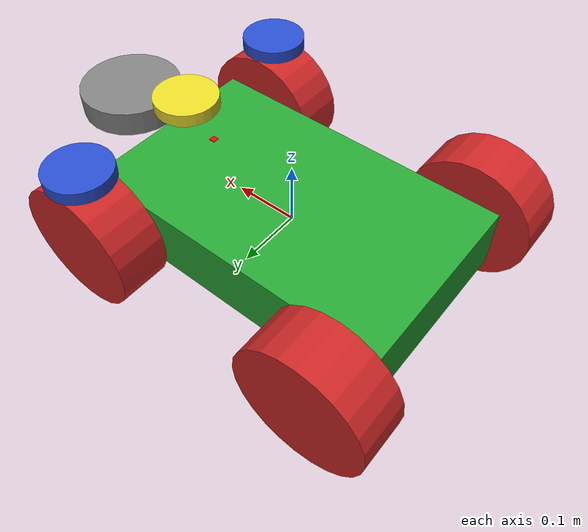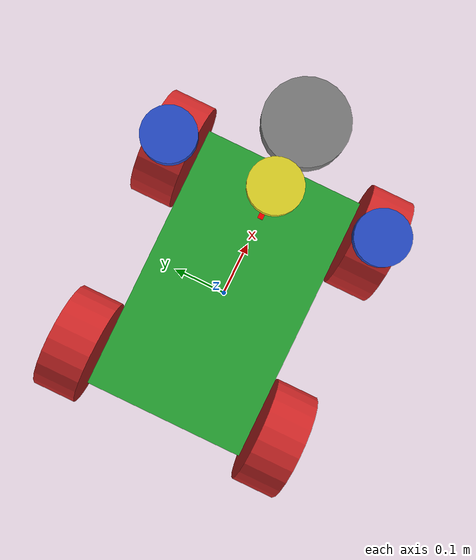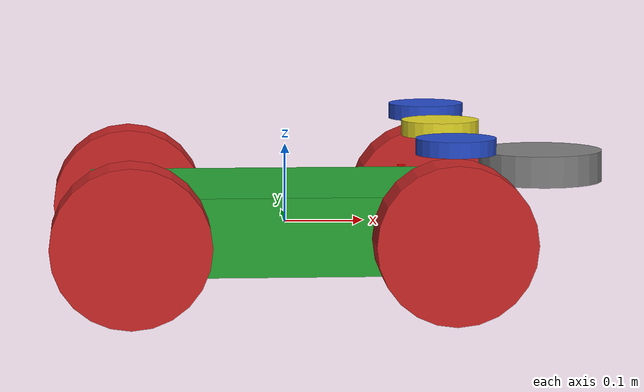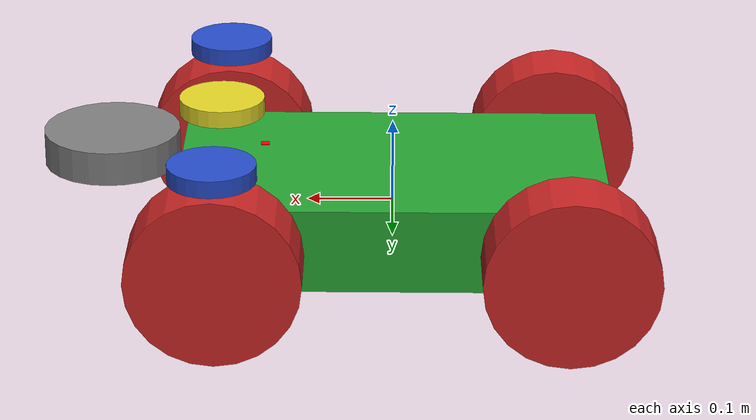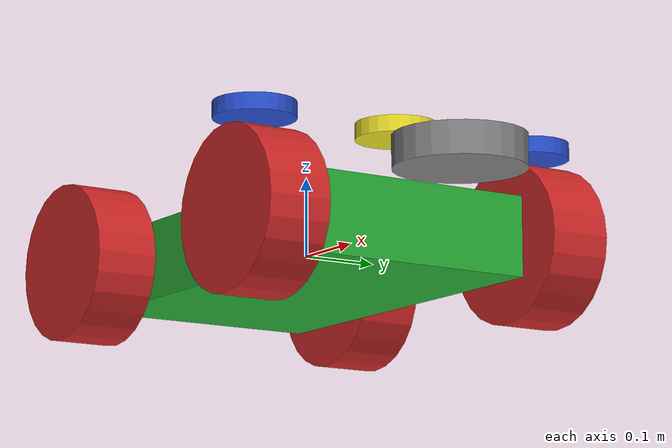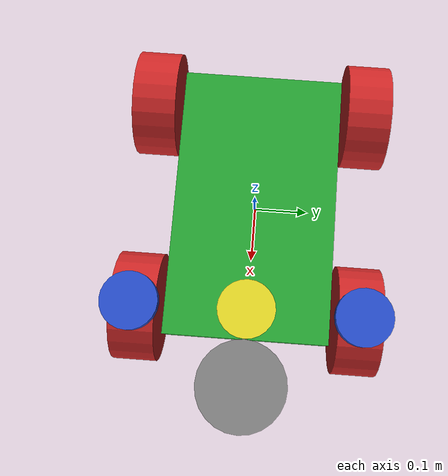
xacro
<?xml version="1.0"?>
<robot name="steer_bot" xmlns:xacro="http://wiki.ros.org/xacro">
  <!-- Include xacro for inertials, materials and wheels -->
  <xacro:include filename="$(find robot_control)/robot_description/urdf_teste/wheel.xacro"/>
  <xacro:include filename="$(find robot_control)/robot_description/urdf_teste/imu.xacro"/>
  <xacro:include filename="$(find robot_control)/robot_description/urdf_teste/lidar.xacro"/>

  <xacro:property name="robot_namespace" value="/steer_bot"/>

  <!-- Gazebo plugins -->
  <gazebo>
    <!-- Load ros_control plugin using the steer_bot_hardware_gazebo
    implementation of the hardware_interface::RobotHW -->
    <plugin name="gazebo_ros_control" filename="libgazebo_ros_control.so">
      <robotNamespace>${robot_namespace}</robotNamespace>
      <robotSimType>steer_bot_hardware_gazebo/SteerBotHardwareGazebo</robotSimType>
      <legacyModeNS>false</legacyModeNS>
    </plugin>
  </gazebo>

  <gazebo reference="imu_link">
    <sensor type="imu" name="imu_sensor">
      <pose>0 0 0 0 0 0</pose>
      <always_on>true</always_on>
      <update_rate>100.0</update_rate>
      <visualize>true</visualize>
      <imu>
        <noise>
          <type>gaussian</type>
          <rate>
            <mean>0.0</mean>
            <stddev>0.0001</stddev>
          </rate>
          <accel>
            <mean>0.0</mean>
            <stddev>0.0001</stddev>
          </accel>
        </noise>
      </imu>
      <plugin name="imu_plugin" filename="libgazebo_ros_imu_sensor.so">
        <robotNamespace>/</robotNamespace>
        <bodyName>imu_link</bodyName>
        <topicName>imu/data</topicName>
        <frameName>imu_link</frameName>
      </plugin>
    </sensor>
  </gazebo>

  <gazebo reference="rplidar_link">
    <sensor name="rplidar" type="ray">
      <pose>0 0 0 0 0 0</pose>
      <visualize>true</visualize>
      <update_rate>40</update_rate>
      <ray>
        <scan>
          <horizontal>
            <samples>720</samples>
            <resolution>1</resolution>
            <min_angle>-1.570796</min_angle>
            <max_angle>1.570796</max_angle>
          </horizontal>
        </scan>
        <range>
          <min>0.12</min>
          <max>30.0</max>
          <resolution>0.01</resolution>
        </range>
        <noise>
          <type>gaussian</type>
          <mean>0.0</mean>
          <stddev>0.01</stddev>
        </noise>
      </ray>
      <plugin name="gazebo_ros_laser" filename="libgazebo_ros_laser.so">
        <topicName>scan</topicName>
        <frameName>rplidar_link</frameName>
      </plugin>
    </sensor>
  </gazebo>

  <!-- Math constants -->
  <xacro:property name="deg_to_rad" value="0.01745329251994329577"/>

  <!-- Robot base dimensions -->
  <xacro:property name="base_length" value="0.5" />
  <xacro:property name="base_width" value="0.3" />
  <xacro:property name="base_height" value="0.1" />
  <xacro:property name="base_mass" value="5" />

  <!-- Wheel link dimensions -->
  <xacro:property name="wheel_radius" value="0.1" />
  <xacro:property name="wheel_thickness" value="0.08" />
  <xacro:property name="wheel_mass" value="1" />

  <!-- Steering link dimensions -->
  <xacro:property name="steer_radius" value="0.05" />
  <xacro:property name="steer_thickness" value="0.02" />
  <xacro:property name="steer_mass" value="1" />

  <!-- Axle positions -->
  <xacro:property name="axle_offset" value="0.05" />
  <xacro:property name="steer_offset" value="0.02" />

  <!-- Lidar dimensions -->
  <xacro:property name="lidar_radius" value="0.08" />
  <xacro:property name="lidar_length" value="0.04" />

  <!-- Base link -->
  <link name="base_link">
    <visual>
      <origin xyz="0 0 0" rpy="0 0 0"/>
      <geometry>
        <box size="${base_length} ${base_width} ${base_height}"/>
      </geometry>
      <material name="green" />
    </visual>
    <collision>
      <origin xyz="0 0 0" rpy="0 0 0"/>
      <geometry>
        <box size="${base_length} ${base_width} ${base_height}"/>
      </geometry>
    </collision>
    <xacro:solid_cuboid_inertial
        rpy="0 0 0" xyz="0 0 0"
        mass="${base_mass}"
        x="${base_length}" y="${base_width}" z="${base_height}" />
  </link>

  <!-- Front steer and rear wheel joints required for ackermann_steering_controller -->
  <xacro:front_steer
    name="front"
    parent="base"
    steer_radius="${steer_radius}"
    steer_thickness="${steer_thickness}"
    steer_mass="${steer_mass}"
    base_length="${base_length}"
    base_width="${base_width}"
    axle_offset="${axle_offset}"
    steer_height="${wheel_radius+steer_offset}">
  </xacro:front_steer>

  <xacro:rear_wheel
    name="rear"
    parent="base"
    wheel_radius="${wheel_radius/4}"
    wheel_thickness="${wheel_thickness/2}"
    wheel_mass="${wheel_mass/32}">
    <origin xyz="${-base_length/2+axle_offset} 0 0" rpy="${-90 * deg_to_rad} 0 0"/>
  </xacro:rear_wheel>

  <!-- Steerable front wheels -->
  <xacro:front_wheel_lr
    name="front_right"
    parent="base"
    reflect="-1"
    wheel_radius="${wheel_radius}"
    wheel_thickness="${wheel_thickness}"
    wheel_mass="${wheel_mass}"
    steer_radius="${steer_radius}"
    steer_thickness="${steer_thickness}"
    steer_mass="${steer_mass}"
    base_length="${base_length}"
    base_width="${base_width}"
    axle_offset="${axle_offset}"
    steer_height="${wheel_radius+steer_offset}">
  </xacro:front_wheel_lr>
  <xacro:front_wheel_lr
    name="front_left"
    parent="base"
    reflect="1"
    wheel_radius="${wheel_radius}"
    wheel_thickness="${wheel_thickness}"
    wheel_mass="${wheel_mass}"
    steer_radius="${steer_radius}"
    steer_thickness="${steer_thickness}"
    steer_mass="${steer_mass}"
    base_length="${base_length}"
    base_width="${base_width}"
    axle_offset="${axle_offset}"
    steer_height="${wheel_radius+steer_offset}">
  </xacro:front_wheel_lr>

  <!-- Rear wheels -->
  <xacro:rear_wheel_lr
    name="rear_right"
    parent="base"
    wheel_radius="${wheel_radius}"
    wheel_thickness="${wheel_thickness}"
    wheel_mass="${wheel_mass}">
    <origin xyz="${-base_length/2+axle_offset} ${-base_width/2-axle_offset} 0" rpy="${-90 * deg_to_rad} 0 0"/>
  </xacro:rear_wheel_lr>
  <xacro:rear_wheel_lr
    name="rear_left"
    parent="base"
    wheel_radius="${wheel_radius}"
    wheel_thickness="${wheel_thickness}"
    wheel_mass="${wheel_mass}">
    <origin xyz="${-base_length/2+axle_offset} ${+base_width/2+axle_offset} 0" rpy="${-90 * deg_to_rad} 0 0"/>
  </xacro:rear_wheel_lr>

  <!-- RPLidar -->
  <xacro:rplidar
    name="rplidar"
    parent="base_link"
    base_length="${base_length}"
    base_height="${base_height}"
    radius="${lidar_radius}"
    length="${lidar_length}">
  </xacro:rplidar>

  <!-- Colour -->
  <gazebo reference="base_link">
    <material>Gazebo/Green</material>
  </gazebo>

</robot>

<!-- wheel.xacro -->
<robot name="wheel" xmlns:xacro="http://wiki.ros.org/xacro">
  <!-- Include xacro for materials and inertials -->
  <xacro:include filename="$(find robot_control)/robot_description/urdf_teste/materials.xacro"/>
  <xacro:include filename="$(find robot_control)/robot_description/urdf_teste/inertials.xacro"/>

  <!-- Properties -->
  <xacro:property name="steer_effort" value="10.0"/>
  <xacro:property name="steer_velocity" value="5.0"/>
  <xacro:property name="steer_limit_deg" value="45.0"/>

  <!-- Bicycle model front steering link (required for steer_drive_controller) -->
  <xacro:macro name="front_steer"
    params="
      name
      parent
      steer_radius
      steer_thickness
      steer_mass
      base_length
      base_width
      axle_offset
      steer_height">
    <link name="${name}_steer_link">
      <visual>
        <origin xyz="0 0 0" rpy="0 0 0"/>
        <geometry>
          <cylinder radius="${steer_radius}" length="${steer_thickness}"/>
        </geometry>
        <material name="yellow" />
      </visual>
      <collision>
        <origin xyz="0 0 0" rpy="0 0 0"/>
        <geometry>
          <cylinder radius="${steer_radius}" length="${steer_thickness}"/>
        </geometry>
      </collision>
      <xacro:solid_cylinder_inertial
          rpy="0 0 0" xyz="0 0 0"
          mass="${steer_mass}"
          radius="${steer_radius}" length="${steer_thickness}" />
    </link>

    <joint name="${name}_steer_joint" type="revolute">
      <parent link="${parent}_link"/>
      <child link="${name}_steer_link"/>
      <origin xyz="${base_length/2-axle_offset} 0 ${steer_height}" rpy="0 0 0"/>
      <axis xyz="0 0 1"/>
      <limit effort="${steer_effort}"
             lower="${-180.0 * deg_to_rad}" upper="${180.0 * deg_to_rad}"
             velocity="${steer_velocity}"/>
    </joint>

    <transmission name="${name}_steer_joint_trans">
      <type>transmission_interface/SimpleTransmission</type>
      <actuator name="${name}_steer_joint_motor">
        <mechanicalReduction>1</mechanicalReduction>
        <hardwareInterface>hardware_interface/PositionJointInterface</hardwareInterface>
      </actuator>
      <joint name="${name}_steer_joint">
        <hardwareInterface>hardware_interface/PositionJointInterface</hardwareInterface>
      </joint>
    </transmission>

    <gazebo reference="${name}_steer_link">
      <material>Gazebo/Yellow</material>
    </gazebo>
  </xacro:macro>

  <!-- Car steering model front (steerable) wheel links (left/right) -->
  <xacro:macro name="front_wheel_lr"
    params="
      name
      parent
      reflect
      wheel_radius
      wheel_thickness
      wheel_mass
      steer_radius
      steer_thickness
      steer_mass
      base_length
      base_width
      axle_offset
      steer_height">
    <link name="${name}_steer_link">
      <visual>
        <origin xyz="0 0 0" rpy="0 0 0"/>
        <geometry>
          <cylinder radius="${steer_radius}" length="${steer_thickness}"/>
        </geometry>
        <material name="blue" />
      </visual>
      <collision>
        <origin xyz="0 0 0" rpy="0 0 0"/>
        <geometry>
          <cylinder radius="${steer_radius}" length="${steer_thickness}"/>
        </geometry>
      </collision>
      <xacro:solid_cylinder_inertial
          rpy="0 0 0" xyz="0 0 0"
          mass="${steer_mass}"
          radius="${steer_radius}" length="${steer_thickness}" />
    </link>

    <joint name="${name}_steer_joint" type="revolute">
      <parent link="${parent}_link"/>
      <child link="${name}_steer_link"/>
      <origin xyz="${base_length/2-axle_offset} ${reflect*(base_width/2+axle_offset)} ${steer_height}" rpy="0 0 0"/>
      <axis xyz="0 0 1"/>
      <limit effort="${steer_effort}"
             lower="${steer_limit_deg * deg_to_rad * -1.0}" upper="${steer_limit_deg * deg_to_rad}"
             velocity="${steer_velocity}"/>
    </joint>

    <link name="${name}_wheel_link">
      <visual>
        <origin xyz="0 0 0" rpy="0 0 0"/>
        <geometry>
          <cylinder radius="${wheel_radius}" length="${wheel_thickness}"/>
        </geometry>
        <material name="red" />
      </visual>
      <collision>
        <origin xyz="0 0 0" rpy="0 0 0"/>
        <geometry>
          <cylinder radius="${wheel_radius}" length="${wheel_thickness}"/>
        </geometry>
      </collision>
      <xacro:solid_cylinder_inertial
          rpy="0 0 0" xyz="0 0 0"
          mass="${wheel_mass}"
          radius="${wheel_radius}" length="${wheel_thickness}" />
    </link>

    <joint name="${name}_wheel_joint" type="continuous">
      <parent link="${name}_steer_link"/>
      <child link="${name}_wheel_link"/>
      <origin xyz="0 0 ${-steer_height}" rpy="${-90 * deg_to_rad} 0 0"/>
      <axis xyz="0 0 1"/>
    </joint>

    <transmission name="${name}_steer_joint_trans">
      <type>transmission_interface/SimpleTransmission</type>
      <actuator name="${name}_steer_joint_motor">
        <mechanicalReduction>1</mechanicalReduction>
        <hardwareInterface>hardware_interface/PositionJointInterface</hardwareInterface>
      </actuator>
      <joint name="${name}_steer_joint">
        <hardwareInterface>hardware_interface/PositionJointInterface</hardwareInterface>
      </joint>
    </transmission>

    <transmission name="${name}_wheel_joint_trans">
      <type>transmission_interface/SimpleTransmission</type>
      <actuator name="${name}_wheel_joint_motor">
        <mechanicalReduction>1</mechanicalReduction>
        <hardwareInterface>hardware_interface/VelocityJointInterface</hardwareInterface>
      </actuator>
      <joint name="${name}_wheel_joint">
        <hardwareInterface>hardware_interface/VelocityJointInterface</hardwareInterface>
      </joint>
    </transmission>

    <gazebo reference="${name}_steer_link">
      <material>Gazebo/Blue</material>
    </gazebo>

    <gazebo reference="${name}_wheel_link">
      <material>Gazebo/Red</material>
    </gazebo>
  </xacro:macro>

  <!-- Bicycle model rear wheel link (required for steer_drive_controller) -->
  <xacro:macro name="rear_wheel"
    params="
      name
      parent
      wheel_radius
      wheel_thickness
      wheel_mass
      *origin">
    <link name="${name}_wheel_link">
      <visual>
        <origin xyz="0 0 0" rpy="0 0 0"/>
        <geometry>
          <cylinder radius="${wheel_radius}" length="${wheel_thickness}"/>
        </geometry>
        <material name="yellow" />
      </visual>
      <collision>
        <origin xyz="0 0 0" rpy="0 0 0"/>
        <geometry>
          <cylinder radius="${wheel_radius}" length="${wheel_thickness}"/>
        </geometry>
      </collision>
      <xacro:solid_cylinder_inertial
          rpy="0 0 0" xyz="0 0 0"
          mass="${wheel_mass}"
          radius="${wheel_radius}" length="${wheel_thickness}" />
    </link>

    <joint name="${name}_wheel_joint" type="continuous">
      <parent link="${parent}_link"/>
      <child link="${name}_wheel_link"/>
      <xacro:insert_block name="origin"/>
      <axis xyz="0 0 1"/>
    </joint>

    <transmission name="${name}_wheel_joint_trans">
      <type>transmission_interface/SimpleTransmission</type>
      <actuator name="${name}_wheel_joint_motor">
        <mechanicalReduction>1</mechanicalReduction>
        <hardwareInterface>hardware_interface/VelocityJointInterface</hardwareInterface>
      </actuator>
      <joint name="${name}_wheel_joint">
        <hardwareInterface>hardware_interface/VelocityJointInterface</hardwareInterface>
      </joint>
    </transmission>

    <gazebo reference="${name}_wheel_link">
      <material>Gazebo/Yellow</material>
    </gazebo>
  </xacro:macro>

  <!-- Bicycle model front wheel link (passive - no transmission) -->
  <xacro:macro name="front_wheel"
    params="
      name
      parent
      wheel_radius
      wheel_thickness
      wheel_mass
      *origin">
    <link name="${name}_wheel_link">
      <visual>
        <origin xyz="0 0 0" rpy="0 0 0"/>
        <geometry>
          <cylinder radius="${wheel_radius}" length="${wheel_thickness}"/>
        </geometry>
        <material name="yellow" />
      </visual>
      <collision>
        <origin xyz="0 0 0" rpy="0 0 0"/>
        <geometry>
          <cylinder radius="${wheel_radius}" length="${wheel_thickness}"/>
        </geometry>
      </collision>
      <xacro:solid_cylinder_inertial
          rpy="0 0 0" xyz="0 0 0"
          mass="${wheel_mass}"
          radius="${wheel_radius}" length="${wheel_thickness}" />
    </link>

    <joint name="${name}_wheel_joint" type="continuous">
      <parent link="${parent}_link"/>
      <child link="${name}_wheel_link"/>
      <xacro:insert_block name="origin"/>
      <axis xyz="0 0 1"/>
    </joint>

    <gazebo reference="${name}_wheel_link">
      <material>Gazebo/Yellow</material>
    </gazebo>

    <gazebo reference="${name}_wheel_joint">
      <provideFeedback>true</provideFeedback>
    </gazebo>
  </xacro:macro>

  <!-- Car steering model rear wheel links (left/right) -->
  <xacro:macro name="rear_wheel_lr"
    params="
      name
      parent
      wheel_radius
      wheel_thickness
      wheel_mass
      *origin">
    <link name="${name}_wheel_link">
      <visual>
        <origin xyz="0 0 0" rpy="0 0 0"/>
        <geometry>
          <cylinder radius="${wheel_radius}" length="${wheel_thickness}"/>
        </geometry>
        <material name="red" />
      </visual>
      <collision>
        <origin xyz="0 0 0" rpy="0 0 0"/>
        <geometry>
          <cylinder radius="${wheel_radius}" length="${wheel_thickness}"/>
        </geometry>
      </collision>
      <xacro:solid_cylinder_inertial
          rpy="0 0 0" xyz="0 0 0"
          mass="${wheel_mass}"
          radius="${wheel_radius}" length="${wheel_thickness}" />
    </link>

    <joint name="${name}_wheel_joint" type="continuous">
      <parent link="${parent}_link"/>
      <child link="${name}_wheel_link"/>
      <xacro:insert_block name="origin"/>
      <axis xyz="0 0 1"/>
    </joint>

    <transmission name="${name}_wheel_joint_trans">
      <type>transmission_interface/SimpleTransmission</type>
      <actuator name="${name}_wheel_joint_motor">
        <mechanicalReduction>1</mechanicalReduction>
        <hardwareInterface>hardware_interface/VelocityJointInterface</hardwareInterface>
      </actuator>
      <joint name="${name}_wheel_joint">
        <hardwareInterface>hardware_interface/VelocityJointInterface</hardwareInterface>
      </joint>
    </transmission>

    <gazebo reference="${name}_wheel_link">
      <material>Gazebo/Red</material>
    </gazebo>
  </xacro:macro>
</robot>

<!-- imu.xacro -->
<robot xmlns:xacro="http://ros.org/wiki/xacro">

    <material name="imu_color">
      <color rgba="1.0 0.0 0.0 1.0"/>
    </material>

    <link name="imu_link">
      <inertial>
        <origin xyz="0 0 0" rpy="0 0 0"/>
        <mass value="0.001"/>
        <inertia ixx="0.000001" ixy="0" ixz="0" iyy="0.000001" iyz="0" izz="0.000001"/>
      </inertial>

      <visual name="imu">
        <origin xyz="0 0 0.0005" rpy="0 0 0"/>
        <geometry>
          <box size="0.01 0.01 0.001"/>
        </geometry>
        <material name="imu_color"/>
      </visual>

      <collision name="imu_col">
        <origin xyz="0 0 0.0005" rpy="0 0 0"/>
        <geometry>
          <box size="0.01 0.01 0.001"/>
        </geometry>
      </collision>
    </link>

    <joint name="imu_joint" type="fixed">
        <origin xyz="0.15 0 0.07077" rpy="0 0 0"/>
        <parent link="base_link" />
        <child link="imu_link" />
    </joint>

</robot>

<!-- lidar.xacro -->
<robot name="wheel" xmlns:xacro="http://wiki.ros.org/xacro">

  <xacro:macro name="rplidar"
    params="
      name
      parent
      base_length
      base_height
      radius
      length">

    <link name="${name}_link">
      <visual>
        <geometry>
          <cylinder radius="${radius}" length="${length}"/>
        </geometry>
        <material name="dark_gray">
            <color rgba="0.5 0.5 0.5 1"/>
        </material>
      </visual>
      <collision>
        <geometry>
          <cylinder radius="${radius}" length="${length}"/>
        </geometry>
      </collision>
      <inertial>
        <mass value="0.2"/>
        <origin xyz="0 0 0" rpy="0 0 0"/>
        <inertia ixx="1e-5" ixy="0.0" ixz="0.0"
                iyy="1e-5" iyz="0.0"
                izz="1e-5"/>
      </inertial>
    </link>

    <joint name="${name}_joint" type="fixed">
      <parent link="${parent}"/>
      <child link="${name}_link"/>
      <origin xyz="${base_length/2 + radius} 0 ${base_height/2 + length/2}" rpy="0 0 0"/>
    </joint>
  </xacro:macro>

</robot>
